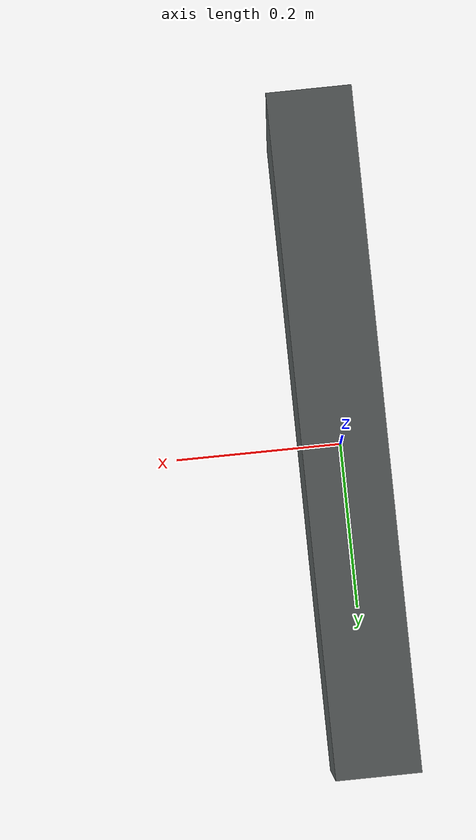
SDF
<?xml version="1.0"?>
<sdf version="1.9">
  <model name="occluder_wall">
    <static>true</static>
    <link name="wall_link">
      <collision name="wall_collision">
        <geometry>
          <box>
            <size>0.10 0.80 0.60</size>
          </box>
        </geometry>
      </collision>
      <visual name="wall_visual">
        <geometry>
          <box>
            <size>0.10 0.80 0.60</size>
          </box>
        </geometry>
        <material>
          <ambient>0.22 0.24 0.24 1</ambient>
          <diffuse>0.32 0.34 0.34 1</diffuse>
          <specular>0.05 0.05 0.05 1</specular>
        </material>
      </visual>
    </link>
  </model>
</sdf>
